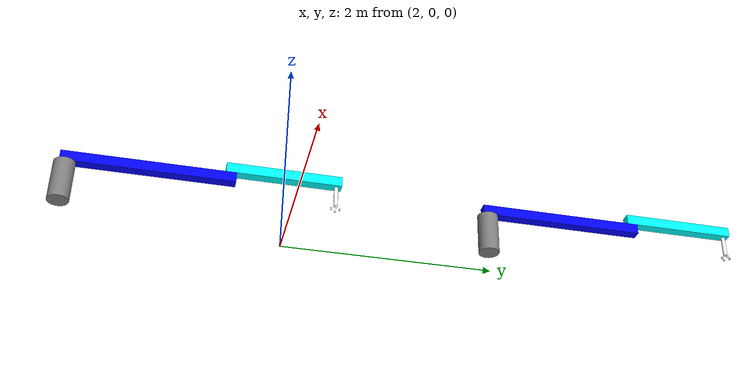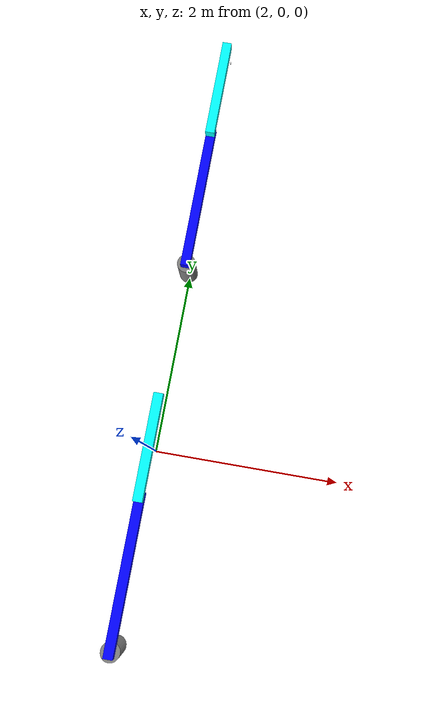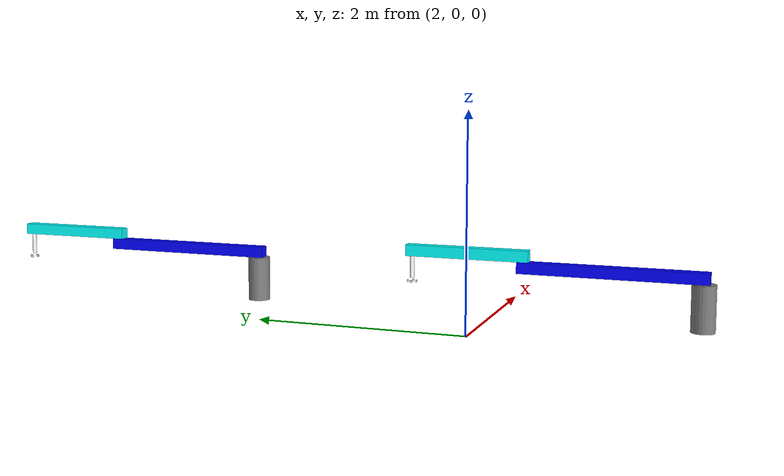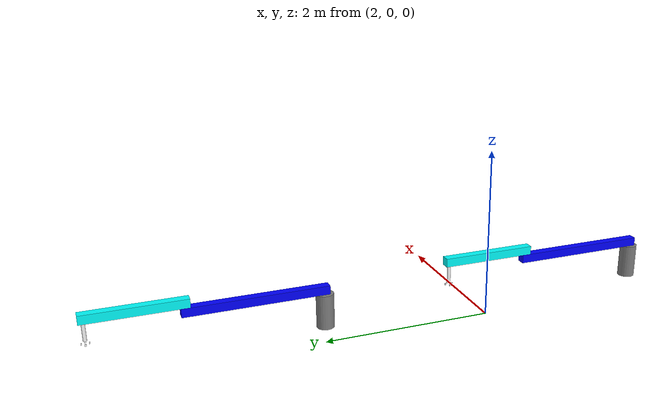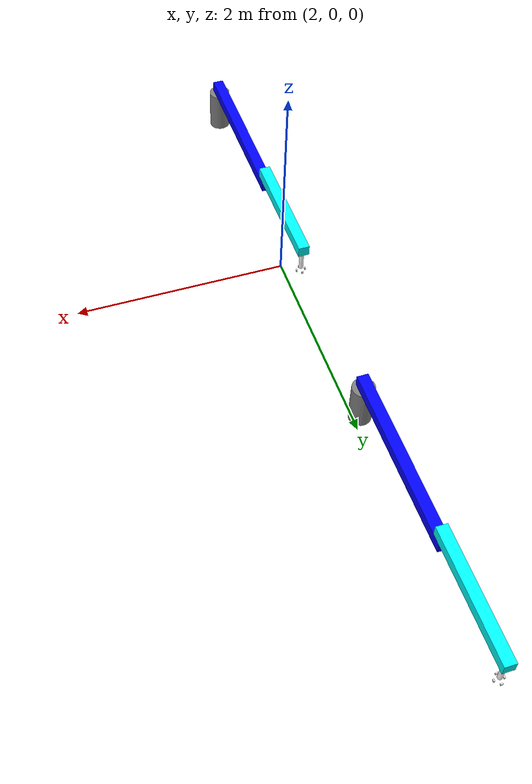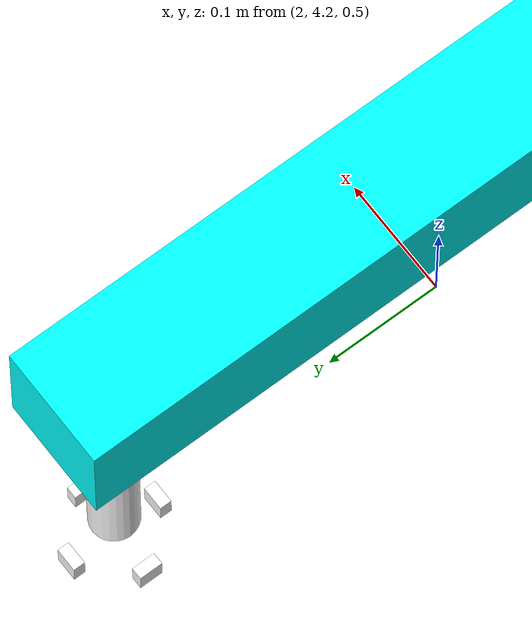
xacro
<?xml version="1.0"?>
<robot xmlns:xacro="http://www.ros.org/wiki/xacro" name="dual_scara_world">

  <link name="world"/>

  <!-- Include Macros -->

  <xacro:include filename="$(find two_scara_collaboration)/urdf/scara_left.urdf.xacro"/>
  <xacro:include filename="$(find two_scara_collaboration)/urdf/scara_right.urdf.xacro"/>

  <!-- Instantiate Elements -->

  <!-- Arguments -->
  <xacro:arg name="robot_thickness" default="0.1"/>

  <!-- Left Robot -->
  <joint name="scara_left_to_world" type="fixed">
    <parent link="world"/>
    <child link="scara_left_base_link"/>
    <origin xyz="2 -2 0.2" rpy="0 0 0"/>
  </joint>
  <xacro:scara_left_robot thickness="$(arg robot_thickness)"/>

  <!-- Right Robot -->
  <joint name="scara_right_to_world" type="fixed">
    <parent link="world"/>
    <child link="scara_right_base_link"/>
    <origin xyz="2 2 0.2" rpy="0 0 0"/>
  </joint>
  <xacro:scara_right_robot thickness="$(arg robot_thickness)"/>

  <!-- Global ros2_control plugin -->
  <gazebo>
    <plugin filename="libgazebo_ros2_control.so" name="gazebo_ros2_control">
      <parameters>$(find two_scara_collaboration)/config/two_scara_controllers.yaml</parameters>
    </plugin>
  </gazebo>

</robot>

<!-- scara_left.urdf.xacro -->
<robot xmlns:xacro="http://www.ros.org/wiki/xacro" name="scara_left">

<xacro:macro name="scara_left_robot" params="thickness:=0.1">

  <!-- ROS2 Control -->
  <ros2_control name="LeftGazeboSystem" type="system">
    <hardware>
      <plugin>gazebo_ros2_control/GazeboSystem</plugin>
    </hardware>
    <joint name="scara_left_joint_1">
      <command_interface name="position"/>
      <state_interface name="position"/>
      <state_interface name="velocity"/>
    </joint>
    <joint name="scara_left_joint_2">
      <command_interface name="position"/>
      <state_interface name="position"/>
      <state_interface name="velocity"/>
    </joint>
    <joint name="scara_left_gripper_joint">
      <command_interface name="position"/>
      <state_interface name="position"/>
      <state_interface name="velocity"/>
    </joint>
  </ros2_control>
  <!-- Plugin removed (moved to world) -->

  <!-- Base Link -->
  <link name="scara_left_base_link">
    <collision>
      <origin xyz="0 0 0.2" rpy="0 0 0"/>
      <geometry>
        <cylinder length="0.4" radius="${thickness}"/>
      </geometry>
    </collision>
    <visual>
      <origin xyz="0 0 0.2" rpy="0 0 0"/>
      <geometry>
        <cylinder length="0.4" radius="${thickness}"/>
      </geometry>
      <material name="gray">
        <color rgba="0.5 0.5 0.5 1"/>
      </material>
    </visual>
    <inertial>
      <origin xyz="0 0 0.2" rpy="0 0 0"/>
      <mass value="1"/>
      <inertia ixx="1.0" ixy="0.0" ixz="0.0" iyy="1.0" iyz="0.0" izz="1.0"/>
    </inertial>
  </link>

  <!-- Joint 1 (Rotation 1) -->
  <joint name="scara_left_joint_1" type="revolute">
    <parent link="scara_left_base_link"/>
    <child link="scara_left_link_1"/>
    <origin xyz="0 0 0.4" rpy="0 0 0"/>
    <axis xyz="0 0 1"/>
    <limit effort="100" velocity="100" lower="-2.6" upper="2.6"/>
  </joint>

  <link name="scara_left_link_1">
    <collision>
      <origin xyz="0 0.75 ${thickness/2}" rpy="0 0 0"/>
      <geometry>
        <box size="${thickness} 1.6 ${thickness}"/>
      </geometry>
    </collision>
    <visual>
      <origin xyz="0 0.75 ${thickness/2}" rpy="0 0 0"/>
      <geometry>
        <box size="${thickness} 1.6 ${thickness}"/>
      </geometry>
      <material name="blue">
        <color rgba="0 0 1 1"/>
      </material>
    </visual>
    <inertial>
      <origin xyz="0 0 0.05" rpy="0 0 0"/>
      <mass value="1"/>
      <inertia ixx="0.001" ixy="0.0" ixz="0.0" iyy="0.001" iyz="0.0" izz="0.001"/>
    </inertial>
  </link>
  <gazebo reference="scara_left_link_1">
    <material>Gazebo/Blue</material>
  </gazebo>

  <!-- Joint 2 (Rotation 2) -->
  <joint name="scara_left_joint_2" type="revolute">
    <parent link="scara_left_link_1"/>
    <child link="scara_left_link_2"/>
    <origin xyz="0 1.5 0.1" rpy="0 0 0"/> <!-- L1 Increased to 1.5 -->
    <axis xyz="0 0 1"/>
    <limit effort="100" velocity="100" lower="-3.00" upper="3.00"/>
  </joint>

  <link name="scara_left_link_2">
    <collision>
      <origin xyz="0 0.5 ${thickness/2}" rpy="0 0 0"/>
      <geometry>
        <box size="${thickness} 1.1 ${thickness}"/>
      </geometry>
    </collision>
    <visual>
      <origin xyz="0 0.5 ${thickness/2}" rpy="0 0 0"/>
      <geometry>
        <box size="${thickness} 1.1 ${thickness}"/>
      </geometry>
      <material name="cyan">
        <color rgba="0 1 1 1"/>
      </material>
    </visual>
    <inertial>
      <origin xyz="0 0 0.05" rpy="0 0 0"/>
      <mass value="1"/>
      <inertia ixx="0.001" ixy="0.0" ixz="0.0" iyy="0.001" iyz="0.0" izz="0.001"/>
    </inertial>
  </link>
  <gazebo reference="scara_left_link_2">
    <material>Gazebo/SkyBlue</material>
  </gazebo>

  <!-- Gripper Base Joint -->
  <joint name="scara_left_gripper_joint" type="prismatic">
    <parent link="scara_left_link_2"/>
    <child link="scara_left_gripper_base_link"/>
    <origin xyz="0 1.0 0" rpy="0 0 0"/> <!-- L2 Increased to 1.0 -->
    <axis xyz="0 0 1"/>
    <limit effort="100" velocity="100" lower="-0.6" upper="0.0"/>
  </joint>

  <link name="scara_left_gripper_base_link">
    <collision>
      <origin xyz="0 0 -0.1" rpy="0 0 0"/>
      <geometry>
        <cylinder length="0.2" radius="0.02"/>
      </geometry>
    </collision>
    <visual>
      <origin xyz="0 0 -0.1" rpy="0 0 0"/>
      <geometry>
        <cylinder length="0.2" radius="0.02"/>
      </geometry>
      <material name="white">
        <color rgba="1 1 1 1"/>
      </material>
    </visual>
    <inertial>
      <origin xyz="0 0 0" rpy="0 0 0"/>
      <mass value="0.00001"/>
      <inertia ixx="0.00001" ixy="0.0" ixz="0.0" iyy="0.00001" iyz="0.0" izz="0.00001"/>
    </inertial>
  </link>
  <gazebo reference="scara_left_gripper_base_link">
    <material>Gazebo/White</material>
  </gazebo>

  <!-- Finger 1 -->
  <joint name="scara_left_finger_1_joint" type="fixed">
    <parent link="scara_left_gripper_base_link"/>
    <child link="scara_left_finger_1"/>
    <origin xyz="0 0.04 -0.23" rpy="0 0 0"/>
  </joint>
  <link name="scara_left_finger_1">
    <collision>
      <geometry><box size="0.02 0.01 0.02"/></geometry>
    </collision>
    <visual>
      <geometry><box size="0.02 0.01 0.02"/></geometry>
      <material name="white"/>
    </visual>
    <inertial>
       <mass value="0.00001"/>
       <inertia ixx="0.0" ixy="0" ixz="0" iyy="0.0" iyz="0" izz="0.0"/>
    </inertial>
  </link>

  <!-- Finger 2 -->
  <joint name="scara_left_finger_2_joint" type="fixed">
    <parent link="scara_left_gripper_base_link"/>
    <child link="scara_left_finger_2"/>
    <origin xyz="-0.04 0 -0.23" rpy="0 0 0"/>
  </joint>
  <link name="scara_left_finger_2">
    <collision>
      <geometry><box size="0.01 0.02 0.02"/></geometry>
    </collision>
    <visual>
      <geometry><box size="0.01 0.02 0.02"/></geometry>
      <material name="white"/>
    </visual>
     <inertial>
       <mass value="0.00001"/>
       <inertia ixx="0.0" ixy="0" ixz="0" iyy="0.0" iyz="0" izz="0.0"/>
    </inertial>
  </link>

  <!-- Finger 3 -->
  <joint name="scara_left_finger_3_joint" type="fixed">
    <parent link="scara_left_gripper_base_link"/>
    <child link="scara_left_finger_3"/>
    <origin xyz="0 -0.04 -0.23" rpy="0 0 0"/>
  </joint>
  <link name="scara_left_finger_3">
    <collision>
      <geometry><box size="0.02 0.01 0.02"/></geometry>
    </collision>
    <visual>
      <geometry><box size="0.02 0.01 0.02"/></geometry>
      <material name="white"/>
    </visual>
     <inertial>
       <mass value="0.00001"/>
       <inertia ixx="0.0" ixy="0" ixz="0" iyy="0.0" iyz="0" izz="0.0"/>
    </inertial>
  </link>

  <!-- Finger 4 -->
  <joint name="scara_left_finger_4_joint" type="fixed">
    <parent link="scara_left_gripper_base_link"/>
    <child link="scara_left_finger_4"/>
    <origin xyz="0.04 0 -0.23" rpy="0 0 0"/>
  </joint>
  <link name="scara_left_finger_4">
    <collision>
      <geometry><box size="0.01 0.02 0.02"/></geometry>
    </collision>
    <visual>
      <geometry><box size="0.01 0.02 0.02"/></geometry>
      <material name="white"/>
    </visual>
     <inertial>
       <mass value="0.00001"/>
       <inertia ixx="0.0" ixy="0" ixz="0" iyy="0.0" iyz="0" izz="0.0"/>
    </inertial>
  </link>
</xacro:macro>
</robot>

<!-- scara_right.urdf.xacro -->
<robot xmlns:xacro="http://www.ros.org/wiki/xacro" name="scara_right">

<xacro:macro name="scara_right_robot" params="thickness:=0.1">

  <!-- ROS2 Control -->
  <ros2_control name="RightGazeboSystem" type="system">
    <hardware>
      <plugin>gazebo_ros2_control/GazeboSystem</plugin>
    </hardware>
    <joint name="scara_right_joint_1">
      <command_interface name="position"/>
      <state_interface name="position"/>
      <state_interface name="velocity"/>
    </joint>
    <joint name="scara_right_joint_2">
      <command_interface name="position"/>
      <state_interface name="position"/>
      <state_interface name="velocity"/>
    </joint>
    <joint name="scara_right_gripper_joint">
      <command_interface name="position"/>
      <state_interface name="position"/>
      <state_interface name="velocity"/>
    </joint>
  </ros2_control>
  <!-- Plugin removed -->

  <!-- Base Link -->
  <link name="scara_right_base_link">
    <collision>
      <origin xyz="0 0 0.2" rpy="0 0 0"/>
      <geometry>
        <cylinder length="0.4" radius="${thickness}"/>
      </geometry>
    </collision>
    <visual>
      <origin xyz="0 0 0.2" rpy="0 0 0"/>
      <geometry>
        <cylinder length="0.4" radius="${thickness}"/>
      </geometry>
      <material name="gray">
        <color rgba="0.5 0.5 0.5 1"/>
      </material>
    </visual>
    <inertial>
      <origin xyz="0 0 0.2" rpy="0 0 0"/>
      <mass value="1"/>
      <inertia ixx="1.0" ixy="0.0" ixz="0.0" iyy="1.0" iyz="0.0" izz="1.0"/>
    </inertial>
  </link>

  <!-- Joint 1 (Rotation 1) -->
  <joint name="scara_right_joint_1" type="revolute">
    <parent link="scara_right_base_link"/>
    <child link="scara_right_link_1"/>
    <origin xyz="0 0 0.4" rpy="0 0 0"/>
    <axis xyz="0 0 1"/>
    <limit effort="100" velocity="100" lower="-2.6" upper="2.6"/>
  </joint>

  <link name="scara_right_link_1">
    <collision>
      <origin xyz="0 0.75 ${thickness/2}" rpy="0 0 0"/>
      <geometry>
        <box size="${thickness} 1.6 ${thickness}"/>
      </geometry>
    </collision>
    <visual>
      <origin xyz="0 0.75 ${thickness/2}" rpy="0 0 0"/>
      <geometry>
        <box size="${thickness} 1.6 ${thickness}"/>
      </geometry>
      <material name="blue">
        <color rgba="0 0 1 1"/>
      </material>
    </visual>
    <inertial>
      <origin xyz="0 0 0.05" rpy="0 0 0"/>
      <mass value="1"/>
      <inertia ixx="0.001" ixy="0.0" ixz="0.0" iyy="0.001" iyz="0.0" izz="0.001"/>
    </inertial>
  </link>
  <gazebo reference="scara_right_link_1">
    <material>Gazebo/Blue</material>
  </gazebo>

  <!-- Joint 2 (Rotation 2) -->
  <joint name="scara_right_joint_2" type="revolute">
    <parent link="scara_right_link_1"/>
    <child link="scara_right_link_2"/>
    <origin xyz="0 1.5 0.1" rpy="0 0 0"/> <!-- L1 Increased to 1.5 -->
    <axis xyz="0 0 1"/>
    <limit effort="100" velocity="100" lower="-3.00" upper="3.00"/>
  </joint>

  <link name="scara_right_link_2">
    <collision>
      <origin xyz="0 0.5 ${thickness/2}" rpy="0 0 0"/>
      <geometry>
        <box size="${thickness} 1.1 ${thickness}"/>
      </geometry>
    </collision>
    <visual>
      <origin xyz="0 0.5 ${thickness/2}" rpy="0 0 0"/>
      <geometry>
        <box size="${thickness} 1.1 ${thickness}"/>
      </geometry>
      <material name="cyan">
        <color rgba="0 1 1 1"/>
      </material>
    </visual>
    <inertial>
      <origin xyz="0 0 0.05" rpy="0 0 0"/>
      <mass value="1"/>
      <inertia ixx="0.001" ixy="0.0" ixz="0.0" iyy="0.001" iyz="0.0" izz="0.001"/>
    </inertial>
  </link>
  <gazebo reference="scara_right_link_2">
    <material>Gazebo/SkyBlue</material>
  </gazebo>

  <!-- Gripper Base Joint -->
  <joint name="scara_right_gripper_joint" type="prismatic">
    <parent link="scara_right_link_2"/>
    <child link="scara_right_gripper_base_link"/>
    <origin xyz="0 1.0 0" rpy="0 0 0"/> <!-- L2 Increased to 1.0 -->
    <axis xyz="0 0 1"/>
    <limit effort="100" velocity="100" lower="-0.6" upper="0.0"/>
  </joint>

  <link name="scara_right_gripper_base_link">
    <collision>
      <origin xyz="0 0 -0.1" rpy="0 0 0"/>
      <geometry>
        <cylinder length="0.2" radius="0.02"/>
      </geometry>
    </collision>
    <visual>
      <origin xyz="0 0 -0.1" rpy="0 0 0"/>
      <geometry>
        <cylinder length="0.2" radius="0.02"/>
      </geometry>
      <material name="white">
        <color rgba="1 1 1 1"/>
      </material>
    </visual>
    <inertial>
      <origin xyz="0 0 0" rpy="0 0 0"/>
      <mass value="0.00001"/>
      <inertia ixx="0.00001" ixy="0.0" ixz="0.0" iyy="0.00001" iyz="0.0" izz="0.00001"/>
    </inertial>
  </link>
  <gazebo reference="scara_right_gripper_base_link">
    <material>Gazebo/White</material>
  </gazebo>

  <!-- Fingers (Static for now or mimic?) -->
  <!-- Simplified to fixed fingers for collision for now, or keep user prismatic structure but naming prefixed -->

  <!-- Finger 1 -->
  <joint name="scara_right_finger_1_joint" type="fixed">
    <parent link="scara_right_gripper_base_link"/>
    <child link="scara_right_finger_1"/>
    <origin xyz="0 0.04 -0.23" rpy="0 0 0"/>
  </joint>
  <link name="scara_right_finger_1">
    <collision>
      <geometry><box size="0.02 0.01 0.02"/></geometry>
    </collision>
    <visual>
      <geometry><box size="0.02 0.01 0.02"/></geometry>
      <material name="white"/>
    </visual>
    <inertial>
       <mass value="0.00001"/>
       <inertia ixx="0.0" ixy="0" ixz="0" iyy="0.0" iyz="0" izz="0.0"/>
    </inertial>
  </link>

  <!-- Finger 2 -->
  <joint name="scara_right_finger_2_joint" type="fixed">
    <parent link="scara_right_gripper_base_link"/>
    <child link="scara_right_finger_2"/>
    <origin xyz="-0.04 0 -0.23" rpy="0 0 0"/>
  </joint>
  <link name="scara_right_finger_2">
    <collision>
      <geometry><box size="0.01 0.02 0.02"/></geometry>
    </collision>
    <visual>
      <geometry><box size="0.01 0.02 0.02"/></geometry>
      <material name="white"/>
    </visual>
     <inertial>
       <mass value="0.00001"/>
       <inertia ixx="0.0" ixy="0" ixz="0" iyy="0.0" iyz="0" izz="0.0"/>
    </inertial>
  </link>

  <!-- Finger 3 -->
  <joint name="scara_right_finger_3_joint" type="fixed">
    <parent link="scara_right_gripper_base_link"/>
    <child link="scara_right_finger_3"/>
    <origin xyz="0 -0.04 -0.23" rpy="0 0 0"/>
  </joint>
  <link name="scara_right_finger_3">
    <collision>
      <geometry><box size="0.02 0.01 0.02"/></geometry>
    </collision>
    <visual>
      <geometry><box size="0.02 0.01 0.02"/></geometry>
      <material name="white"/>
    </visual>
     <inertial>
       <mass value="0.00001"/>
       <inertia ixx="0.0" ixy="0" ixz="0" iyy="0.0" iyz="0" izz="0.0"/>
    </inertial>
  </link>

  <!-- Finger 4 -->
  <joint name="scara_right_finger_4_joint" type="fixed">
    <parent link="scara_right_gripper_base_link"/>
    <child link="scara_right_finger_4"/>
    <origin xyz="0.04 0 -0.23" rpy="0 0 0"/>
  </joint>
  <link name="scara_right_finger_4">
    <collision>
      <geometry><box size="0.01 0.02 0.02"/></geometry>
    </collision>
    <visual>
      <geometry><box size="0.01 0.02 0.02"/></geometry>
      <material name="white"/>
    </visual>
     <inertial>
       <mass value="0.00001"/>
       <inertia ixx="0.0" ixy="0" ixz="0" iyy="0.0" iyz="0" izz="0.0"/>
    </inertial>
  </link>
</xacro:macro>
</robot>
